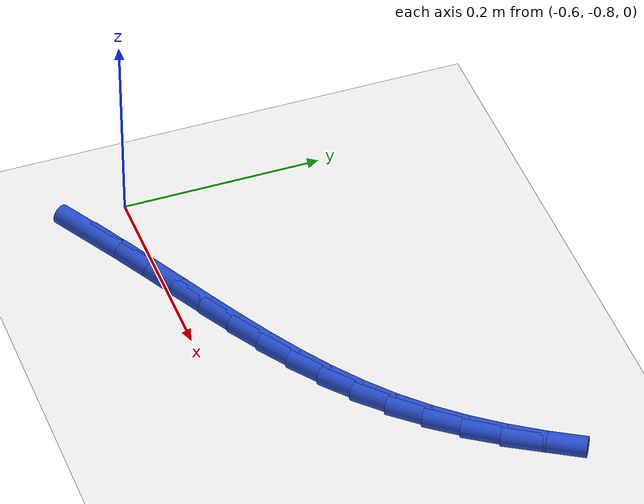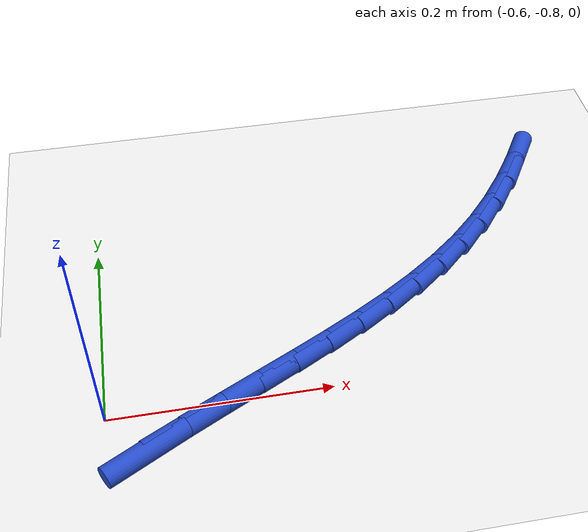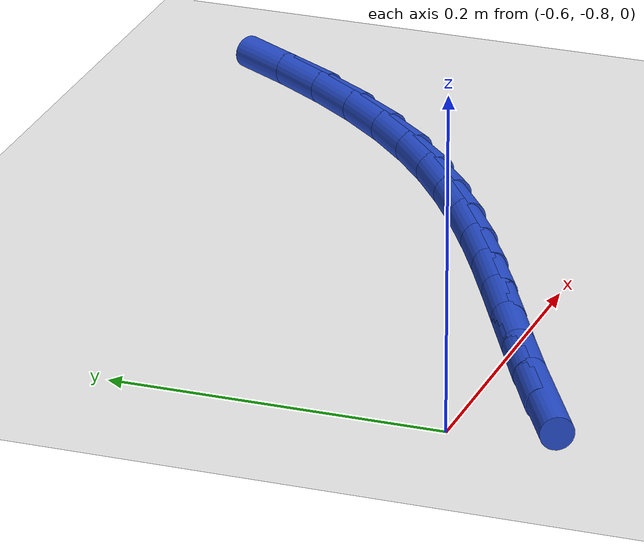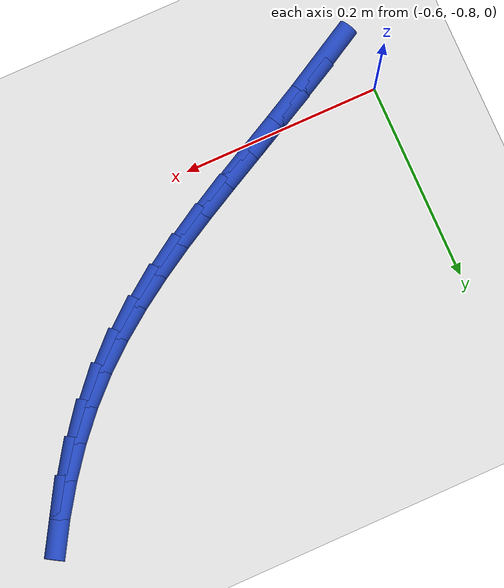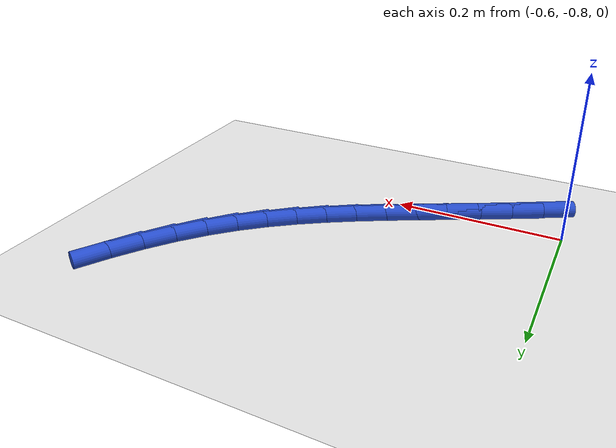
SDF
<sdf version="1.6">
 <world name="default">
  <model name="ground_plane">
   <static>1</static>
   <link name="link">
    <collision name="collision">
     <geometry><plane><normal>0 0 1</normal><size>100 100</size></plane></geometry>
     <surface><friction><ode><mu>100</mu><mu2>50</mu2></ode></friction></surface>
    </collision>
    <visual name="visual">
     <cast_shadows>0</cast_shadows>
     <geometry><plane><normal>0 0 1</normal><size>100 100</size></plane></geometry>
     <material>
      <script><uri>file://media/materials/scripts/gazebo.material</uri><name>Gazebo/WhiteGlow</name></script>
     </material>
    </visual>
   </link>
  </model>
  <model name="line">
   <link name="link_151">
    <pose>-0.5662959752533682 -0.8451558646228743 0.01 0 1.57 0.5090277189020269</pose>
    <collision name="collision">
     <geometry><cylinder><radius>0.01</radius><length>0.08</length></cylinder></geometry>
    </collision>
    <visual name="visual">
     <material>
      <script><name>Gazebo/Blue</name><uri>file://media/materials/scripts/gazebo.material</uri></script>
     </material>
     <geometry><cylinder><radius>0.01</radius><length>0.08</length></cylinder></geometry>
    </visual>
   </link>
   <link name="link_152">
    <pose>-0.5321495894902123 -0.8260993499975653 0.01 0 1.57 0.48840922008152865</pose>
    <collision name="collision">
     <geometry><cylinder><radius>0.01</radius><length>0.08</length></cylinder></geometry>
    </collision>
    <visual name="visual">
     <material>
      <script><name>Gazebo/Blue</name><uri>file://media/materials/scripts/gazebo.material</uri></script>
     </material>
     <geometry><cylinder><radius>0.01</radius><length>0.08</length></cylinder></geometry>
    </visual>
   </link>
   <link name="link_153">
    <pose>-0.4980214651295694 -0.8079654900276505 0.01 0 1.57 0.4773959398164421</pose>
    <collision name="collision">
     <geometry><cylinder><radius>0.01</radius><length>0.08</length></cylinder></geometry>
    </collision>
    <visual name="visual">
     <material>
      <script><name>Gazebo/Blue</name><uri>file://media/materials/scripts/gazebo.material</uri></script>
     </material>
     <geometry><cylinder><radius>0.01</radius><length>0.08</length></cylinder></geometry>
    </visual>
   </link>
   <link name="link_154">
    <pose>-0.46409117969373165 -0.79041316795969 0.01 0 1.57 0.47633305505804063</pose>
    <collision name="collision">
     <geometry><cylinder><radius>0.01</radius><length>0.08</length></cylinder></geometry>
    </collision>
    <visual name="visual">
     <material>
      <script><name>Gazebo/Blue</name><uri>file://media/materials/scripts/gazebo.material</uri></script>
     </material>
     <geometry><cylinder><radius>0.01</radius><length>0.08</length></cylinder></geometry>
    </visual>
   </link>
   <link name="link_155">
    <pose>-0.43053831070499315 -0.7731012670402438 0.01 0 1.57 0.48557721879858845</pose>
    <collision name="collision">
     <geometry><cylinder><radius>0.01</radius><length>0.08</length></cylinder></geometry>
    </collision>
    <visual name="visual">
     <material>
      <script><name>Gazebo/Blue</name><uri>file://media/materials/scripts/gazebo.material</uri></script>
     </material>
     <geometry><cylinder><radius>0.01</radius><length>0.08</length></cylinder></geometry>
    </visual>
   </link>
   <link name="link_156">
    <pose>-0.39754243568564596 -0.7556886705158719 0.01 0 1.57 0.5054999060177874</pose>
    <collision name="collision">
     <geometry><cylinder><radius>0.01</radius><length>0.08</length></cylinder></geometry>
    </collision>
    <visual name="visual">
     <material>
      <script><name>Gazebo/Blue</name><uri>file://media/materials/scripts/gazebo.material</uri></script>
     </material>
     <geometry><cylinder><radius>0.01</radius><length>0.08</length></cylinder></geometry>
    </visual>
   </link>
   <link name="link_157">
    <pose>-0.365283132157983 -0.7378342616331337 0.01 0 1.57 0.5364559112747028</pose>
    <collision name="collision">
     <geometry><cylinder><radius>0.01</radius><length>0.08</length></cylinder></geometry>
    </collision>
    <visual name="visual">
     <material>
      <script><name>Gazebo/Blue</name><uri>file://media/materials/scripts/gazebo.material</uri></script>
     </material>
     <geometry><cylinder><radius>0.01</radius><length>0.08</length></cylinder></geometry>
    </visual>
   </link>
   <link name="link_158">
    <pose>-0.33393997764429695 -0.7191969236385892 0.01 0 1.57 0.5787087100502455</pose>
    <collision name="collision">
     <geometry><cylinder><radius>0.01</radius><length>0.08</length></cylinder></geometry>
    </collision>
    <visual name="visual">
     <material>
      <script><name>Gazebo/Blue</name><uri>file://media/materials/scripts/gazebo.material</uri></script>
     </material>
     <geometry><cylinder><radius>0.01</radius><length>0.08</length></cylinder></geometry>
    </visual>
   </link>
   <link name="link_159">
    <pose>-0.3036925496668802 -0.6994355397787982 0.01 0 1.57 0.632307018723687</pose>
    <collision name="collision">
     <geometry><cylinder><radius>0.01</radius><length>0.08</length></cylinder></geometry>
    </collision>
    <visual name="visual">
     <material>
      <script><name>Gazebo/Blue</name><uri>file://media/materials/scripts/gazebo.material</uri></script>
     </material>
     <geometry><cylinder><radius>0.01</radius><length>0.08</length></cylinder></geometry>
    </visual>
   </link>
   <link name="link_160">
    <pose>-0.2747204257480266 -0.6782089933003209 0.01 0 1.57 0.6969174167157218</pose>
    <collision name="collision">
     <geometry><cylinder><radius>0.01</radius><length>0.08</length></cylinder></geometry>
    </collision>
    <visual name="visual">
     <material>
      <script><name>Gazebo/Blue</name><uri>file://media/materials/scripts/gazebo.material</uri></script>
     </material>
     <geometry><cylinder><radius>0.01</radius><length>0.08</length></cylinder></geometry>
    </visual>
   </link>
   <link name="link_161">
    <pose>-0.24720318341002842 -0.6551761674497172 0.01 0 1.57 0.7713115246457325</pose>
    <collision name="collision">
     <geometry><cylinder><radius>0.01</radius><length>0.08</length></cylinder></geometry>
    </collision>
    <visual name="visual">
     <material>
      <script><name>Gazebo/Blue</name><uri>file://media/materials/scripts/gazebo.material</uri></script>
     </material>
     <geometry><cylinder><radius>0.01</radius><length>0.08</length></cylinder></geometry>
    </visual>
   </link>
   <link name="link_162">
    <pose>-0.22131549477933765 -0.6300077355208906 0.01 0 1.57 0.8466049575157212</pose>
    <collision name="collision">
     <geometry><cylinder><radius>0.01</radius><length>0.08</length></cylinder></geometry>
    </collision>
    <visual name="visual">
     <material>
      <script><name>Gazebo/Blue</name><uri>file://media/materials/scripts/gazebo.material</uri></script>
     </material>
     <geometry><cylinder><radius>0.01</radius><length>0.08</length></cylinder></geometry>
    </visual>
   </link>
   <link name="link_163">
    <pose>-0.19711732971283963 -0.6026500560393889 0.01 0 1.57 0.9149127838995268</pose>
    <collision name="collision">
     <geometry><cylinder><radius>0.01</radius><length>0.08</length></cylinder></geometry>
    </collision>
    <visual name="visual">
     <material>
      <script><name>Gazebo/Blue</name><uri>file://media/materials/scripts/gazebo.material</uri></script>
     </material>
     <geometry><cylinder><radius>0.01</radius><length>0.08</length></cylinder></geometry>
    </visual>
   </link>
   <link name="link_164">
    <pose>-0.17455290256702755 -0.5733277041873277 0.01 0 1.57 0.9763226835179313</pose>
    <collision name="collision">
     <geometry><cylinder><radius>0.01</radius><length>0.08</length></cylinder></geometry>
    </collision>
    <visual name="visual">
     <material>
      <script><name>Gazebo/Blue</name><uri>file://media/materials/scripts/gazebo.material</uri></script>
     </material>
     <geometry><cylinder><radius>0.01</radius><length>0.08</length></cylinder></geometry>
    </visual>
   </link>
   <link name="link_165">
    <pose>-0.1535613116508715 -0.5422775514924109 0.01 0 1.57 1.031394098886317</pose>
    <collision name="collision">
     <geometry><cylinder><radius>0.01</radius><length>0.08</length></cylinder></geometry>
    </collision>
    <visual name="visual">
     <material>
      <script><name>Gazebo/Blue</name><uri>file://media/materials/scripts/gazebo.material</uri></script>
     </material>
     <geometry><cylinder><radius>0.01</radius><length>0.08</length></cylinder></geometry>
    </visual>
   </link>
  </model>
 </world>
</sdf>
